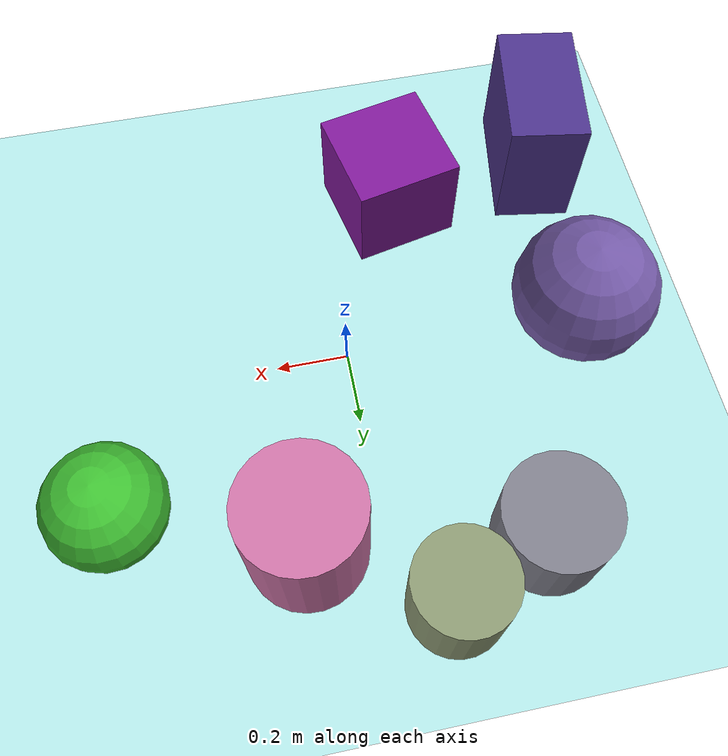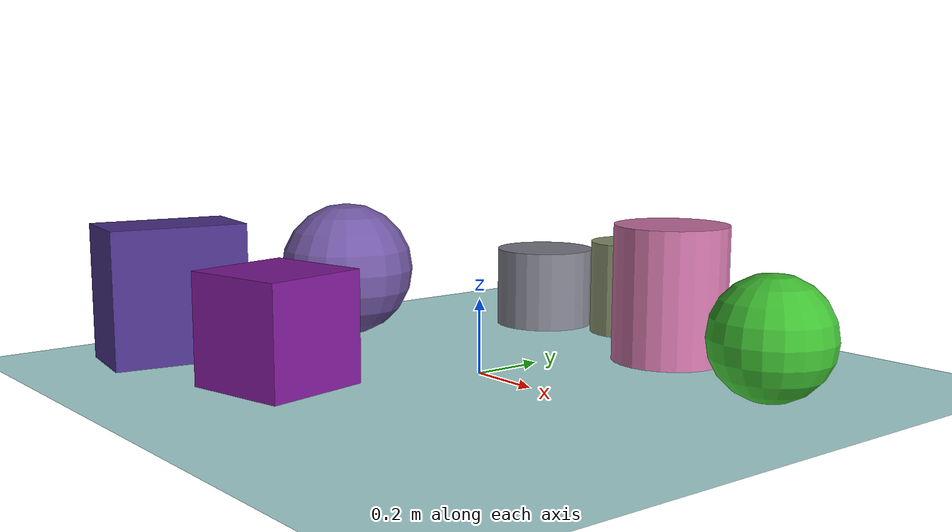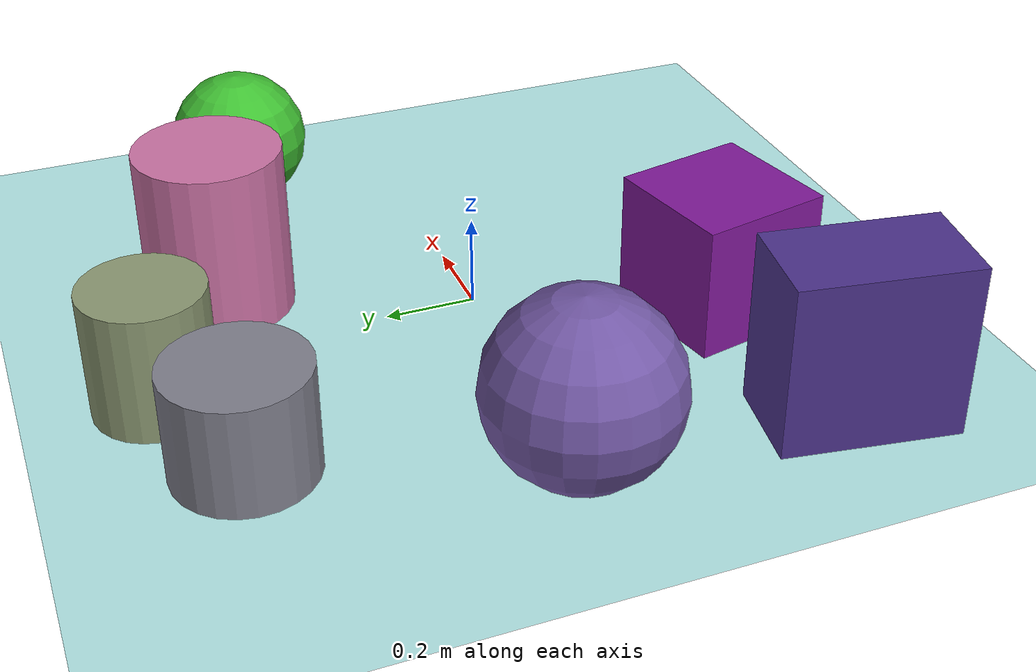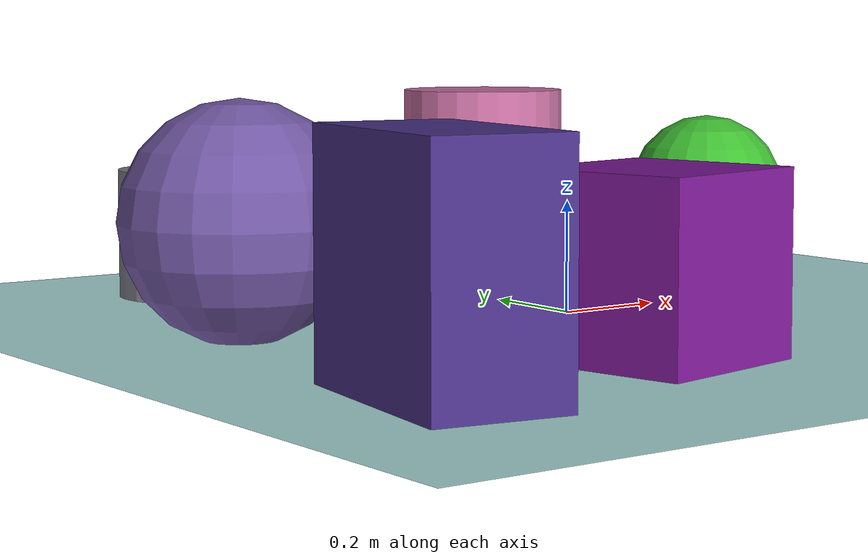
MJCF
<mujoco>
   <asset>
<texture type="skybox" builtin="gradient" rgb1="0.3 0.5 0.2" rgb2="0.6 1.0 0.9" width="500" height="500"/>
<texture name="checker_0" builtin="checker" rgb1="0.6 0.3 0.2" rgb2="0.0 0.1 0.9" width="500" height="500"/>
<texture name="flat_1" builtin="flat" rgb1="0.5 0.1 0.6" rgb2="0.5 0.1 0.6"  width="500" height="500"/>
<texture name="gradient_2" builtin="gradient" rgb1="0.3 0.7 0.4" rgb2="0.7 0.3 0.7" width="500" height="500"/>
<texture name="gradient_3" builtin="gradient" rgb1="1.0 0.4 0.3" rgb2="0.1 0.8 0.6" width="500" height="500"/>
<texture name="checker_4" builtin="checker" rgb1="0.2 0.8 0.1" rgb2="0.3 0.7 0.3" width="500" height="500"/>
<texture name="checker_5" builtin="checker" rgb1="0.8 0.4 0.5" rgb2="0.1 0.3 0.8" width="500" height="500"/>
<texture name="checker_6" builtin="checker" rgb1="0.7 0.6 0.9" rgb2="0.9 0.3 0.4" width="500" height="500"/><material name="checker_0_mat" reflectance="0.3874611181957114" texrepeat="10 10" texture="checker_0" texuniform="false" />
<material name="flat_1_mat" reflectance="0.6811720937581063" texture="flat_1" texuniform="true"/>
<material name="gradient_2_mat" reflectance="0.7843918496897799" texture="gradient_2" texuniform="true"/>
<material name="gradient_3_mat" reflectance="0.050359010377064806" texture="gradient_3" texuniform="true"/>
<material name="checker_4_mat" reflectance="0.9764159530537052" texrepeat="8 8" texture="checker_4" texuniform="false" />
<material name="checker_5_mat" reflectance="0.777578937333321" texrepeat="3 3" texture="checker_5" texuniform="false" />
<material name="checker_6_mat" reflectance="0.5997548706311274" texrepeat="8 8" texture="checker_6" texuniform="false" />
   </asset>

   <worldbody>
     <geom type="plane" size="1 1 0.1" rgba="0.7 0.9 0.9 1" />
<light pos="-0.5007763091874016 -0.17015735858155367 2" dir="0 0 -1" cutoff="90" diffuse="1 1 1" specular="1 1 1"/>
<geom type="box" pos="-0.68 -0.56 0.19" size="0.19 0.11 0.19" material="checker_0_mat" euler="0 0 81" />
<geom type="box" pos="-0.22 -0.49 0.15" size="0.15 0.15 0.15" material="flat_1_mat" euler="0 0 12" />
<geom type="cylinder" pos="-0.41 0.61 0.12" size="0.15 0.12 0.12" material="gradient_2_mat" euler="0 0 26" />
<geom type="cylinder" pos="-0.14 0.73 0.14" size="0.13 0.14 0.14" material="gradient_3_mat" euler="0 0 38" />
<geom type="sphere" pos="0.67 0.36 0.16" size="0.16 0.16 0.16" material="checker_4_mat" euler="0 0 30" />
<geom type="sphere" pos="-0.66 0.02 0.2" size="0.2 0.2 0.2" material="checker_5_mat" euler="0 0 74" />
<geom type="cylinder" pos="0.2 0.52 0.19" size="0.16 0.19 0.19" material="checker_6_mat" euler="0 0 80" /><camera euler="60 0 180" fovy="60" name="camera2" pos="0.2 -1.5 1"></camera>   </worldbody>
   <visual>
      <headlight diffuse="0.7 0.7 0.7"/>
   </visual>
</mujoco>
